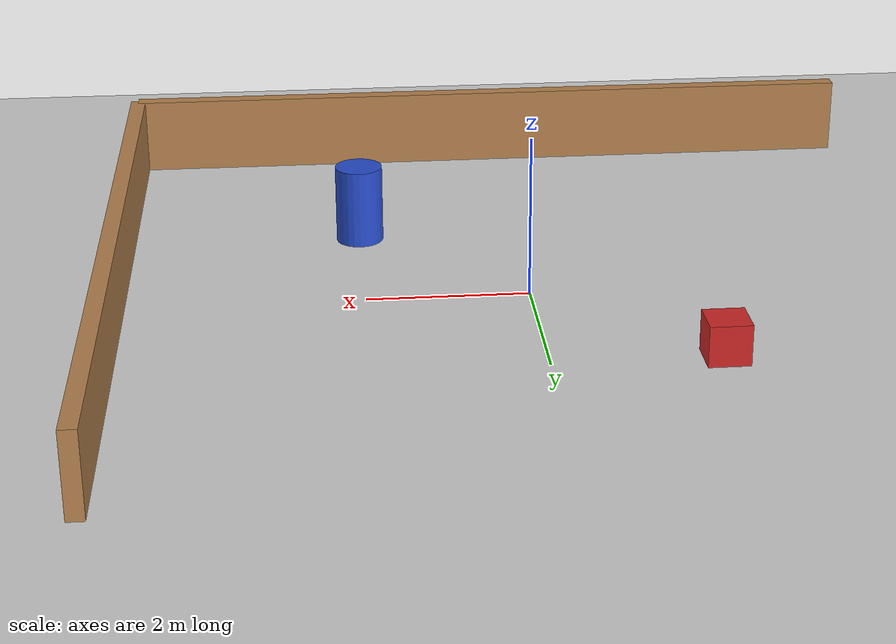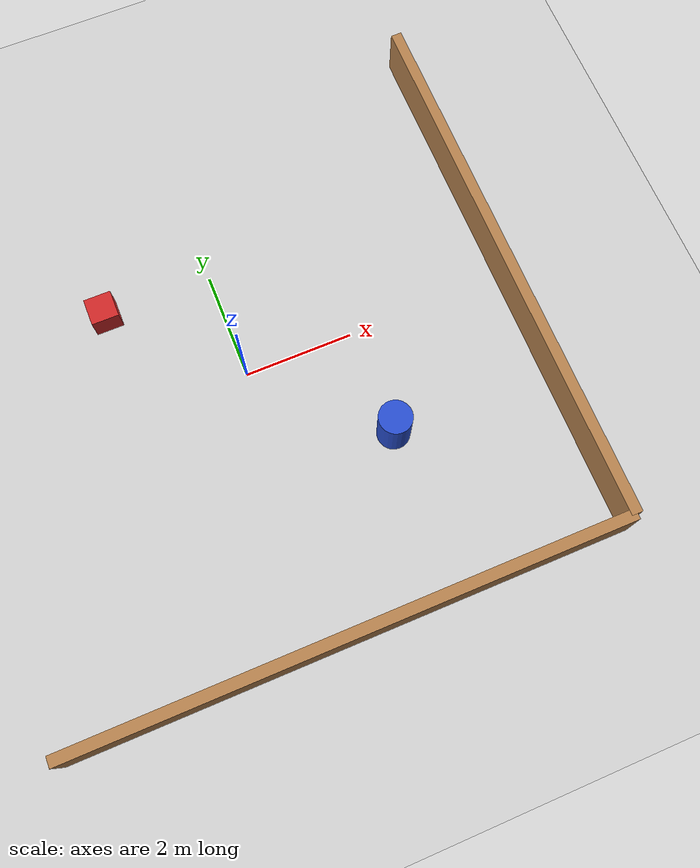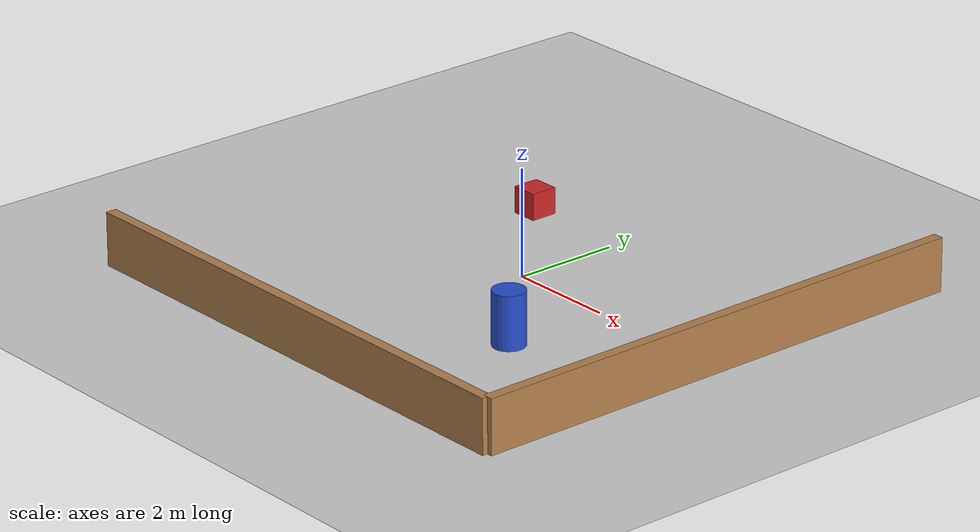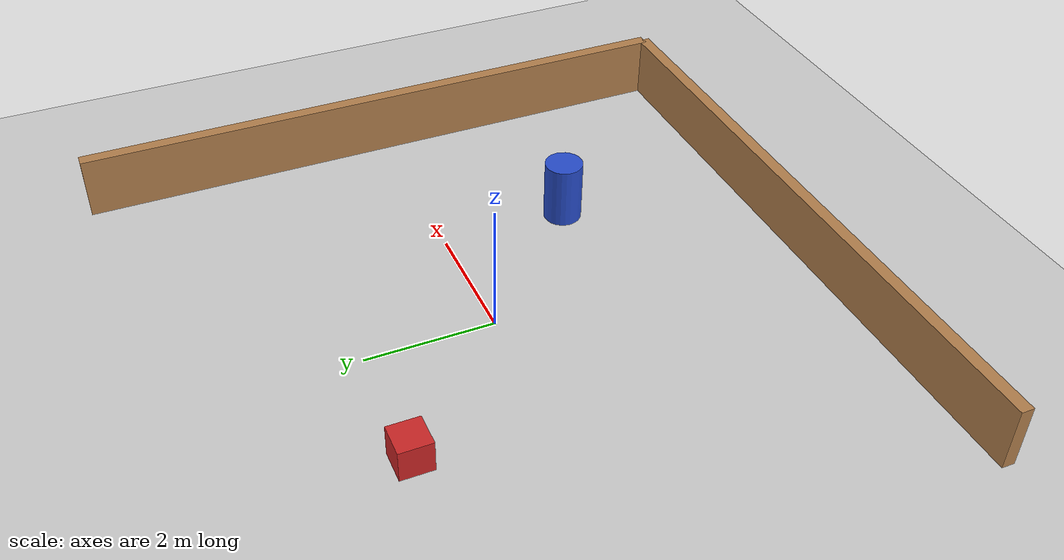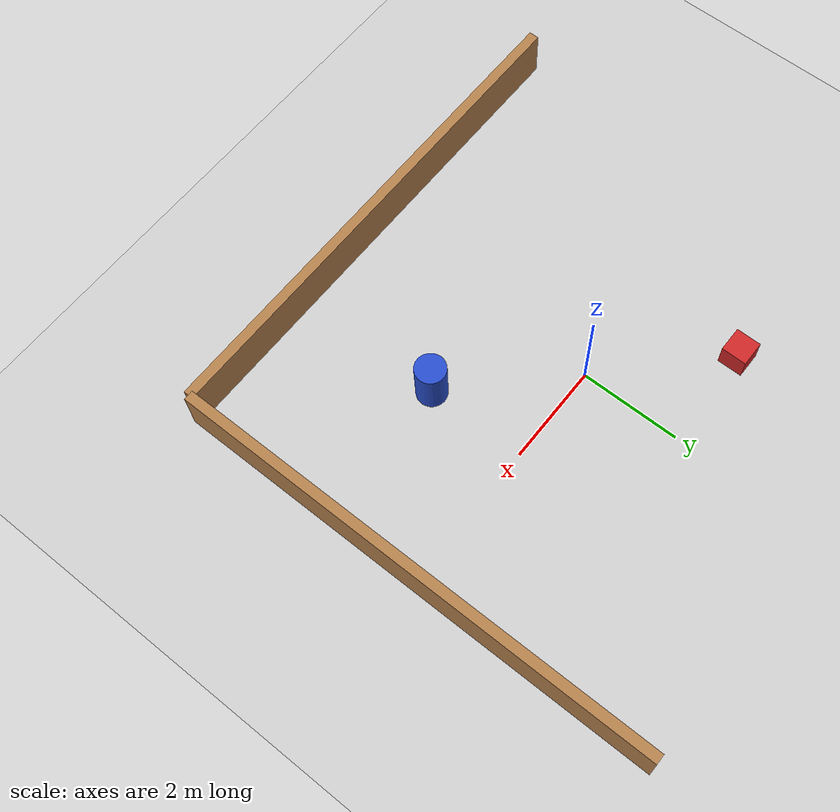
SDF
<?xml version="1.0" ?>
<sdf version="1.7">
  <world name="simple_world">
    <!-- Light Source -->
    <light name="sun" type="directional">
      <cast_shadows>true</cast_shadows>
      <pose>0 0 10 0 0 0</pose>
      <diffuse>0.8 0.8 0.8 1</diffuse>
      <specular>0.2 0.2 0.2 1</specular>
      <attenuation>
        <range>1000</range>
        <constant>0.9</constant>
        <linear>0.01</linear>
        <quadratic>0.001</quadratic>
      </attenuation>
      <direction>-0.5 0.1 -0.9</direction>
    </light>

    <!-- Ground Plane -->
    <model name="ground_plane">
      <static>true</static>
      <link name="link">
        <collision name="collision">
          <geometry>
            <plane>
              <normal>0 0 1</normal>
              <size>100 100</size>
            </plane>
          </geometry>
          <surface>
            <friction>
              <ode>
                <mu>100</mu>
                <mu2>50</mu2>
              </ode>
            </friction>
          </surface>
        </collision>
        <visual name="visual">
          <cast_shadows>false</cast_shadows>
          <geometry>
            <plane>
              <normal>0 0 1</normal>
              <size>100 100</size>
            </plane>
          </geometry>
          <material>
            <script>
              <uri>file://media/materials/scripts/gazebo.material</uri>
              <name>Gazebo/Grey</name>
            </script>
          </material>
        </visual>
      </link>
    </model>

    <!-- Simple Obstacles -->
    <model name="wall_1">
      <static>true</static>
      <pose>0 -5 0.5 0 0 0</pose>
      <link name="link">
        <collision name="collision">
          <geometry>
            <box><size>10 0.2 1</size></box>
          </geometry>
        </collision>
        <visual name="visual">
          <geometry>
            <box><size>10 0.2 1</size></box>
          </geometry>
           <material>
            <script>
              <uri>file://media/materials/scripts/gazebo.material</uri>
              <name>Gazebo/Wood</name>
            </script>
          </material>
        </visual>
      </link>
    </model>

    <model name="wall_2">
      <static>true</static>
      <pose>5 0 0.5 0 0 1.5707</pose> <!-- Rotated 90 degrees -->
      <link name="link">
        <collision name="collision">
          <geometry>
            <box><size>10 0.2 1</size></box>
          </geometry>
        </collision>
        <visual name="visual">
          <geometry>
            <box><size>10 0.2 1</size></box>
          </geometry>
           <material>
            <script>
              <uri>file://media/materials/scripts/gazebo.material</uri>
              <name>Gazebo/Wood</name>
            </script>
          </material>
        </visual>
      </link>
    </model>

    <model name="box_obstacle_1">
      <static>true</static>
      <pose>-2 2 0.25 0 0 0</pose>
      <link name="link">
        <collision name="collision">
          <geometry>
            <box><size>0.5 0.5 0.5</size></box>
          </geometry>
        </collision>
        <visual name="visual">
          <geometry>
            <box><size>0.5 0.5 0.5</size></box>
          </geometry>
           <material>
            <script>
              <uri>file://media/materials/scripts/gazebo.material</uri>
              <name>Gazebo/Red</name>
            </script>
          </material>
        </visual>
      </link>
    </model>

     <model name="cylinder_obstacle_1">
      <static>true</static>
      <pose>2 -2 0.5 0 0 0</pose>
      <link name="link">
        <collision name="collision">
          <geometry>
            <cylinder><radius>0.3</radius><length>1.0</length></cylinder>
          </geometry>
        </collision>
        <visual name="visual">
          <geometry>
            <cylinder><radius>0.3</radius><length>1.0</length></cylinder>
          </geometry>
           <material>
            <script>
              <uri>file://media/materials/scripts/gazebo.material</uri>
              <name>Gazebo/Blue</name>
            </script>
          </material>
        </visual>
      </link>
    </model>

    <!-- Gazebo Physics and Scene settings -->
    <physics type="ode">
      <max_step_size>0.001</max_step_size>
      <real_time_factor>1</real_time_factor>
      <real_time_update_rate>1000</real_time_update_rate>
    </physics>
    <scene>
      <ambient>0.4 0.4 0.4 1</ambient>
      <background>0.7 0.7 0.7 1</background>
      <shadows>true</shadows>
    </scene>

  </world>
</sdf>
